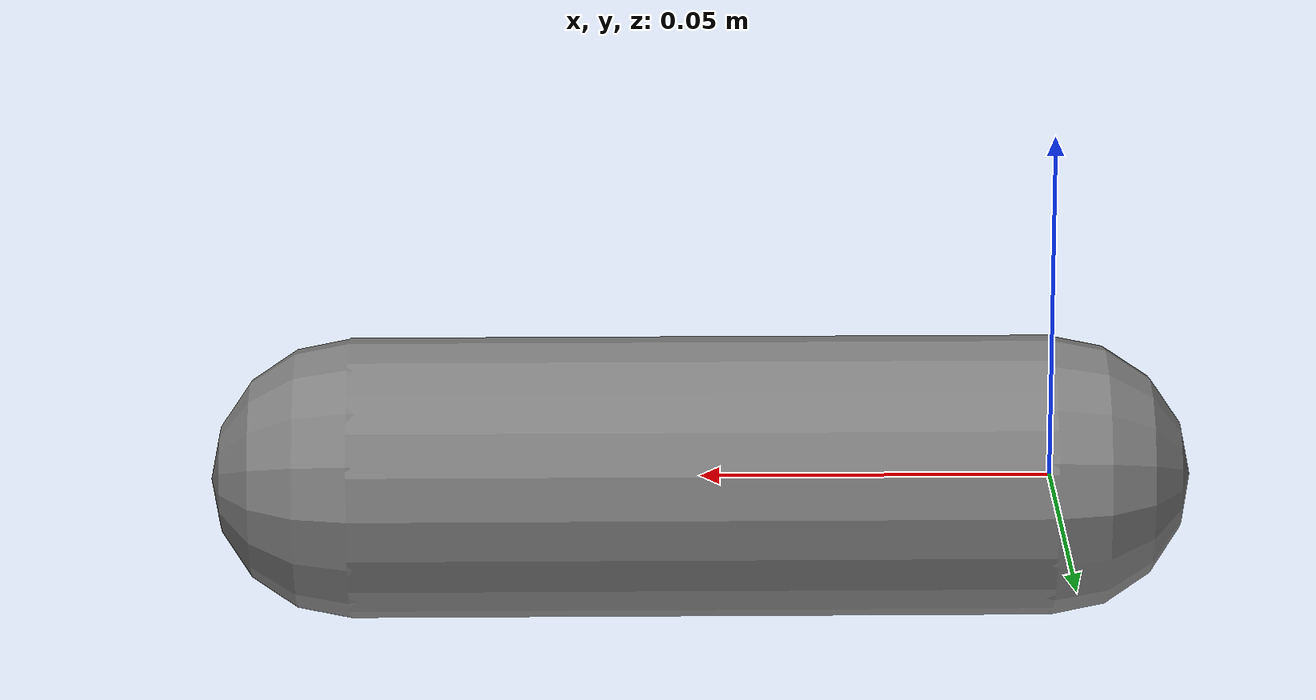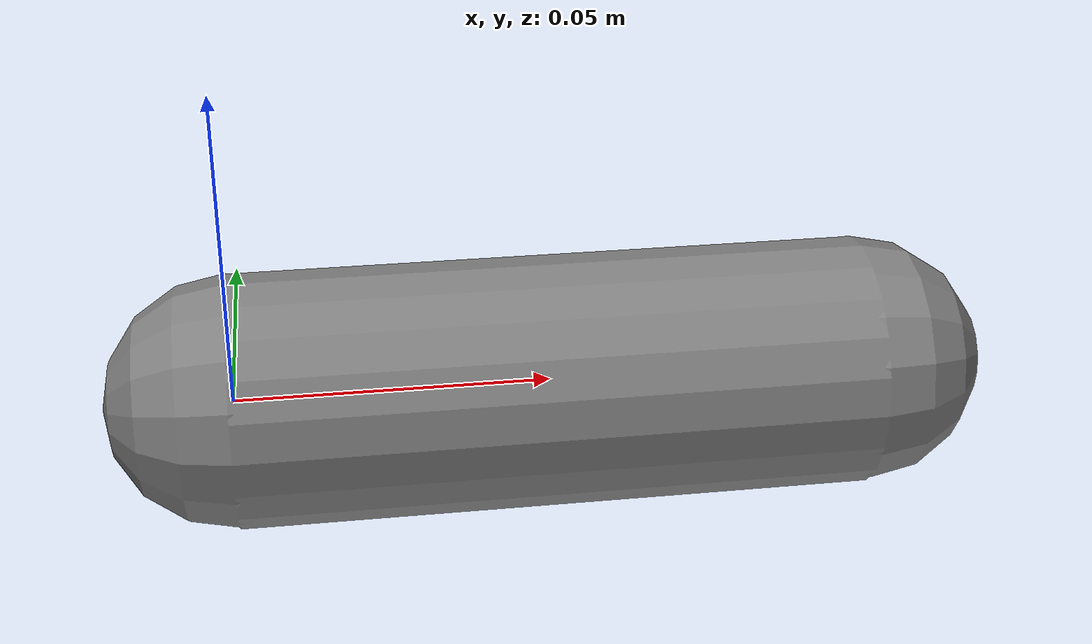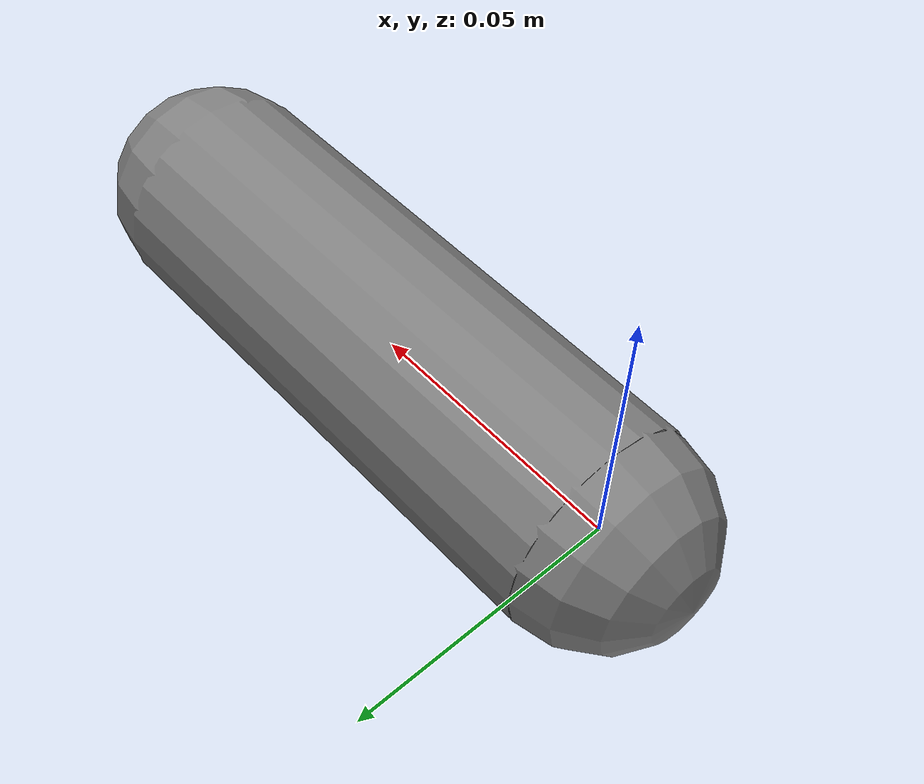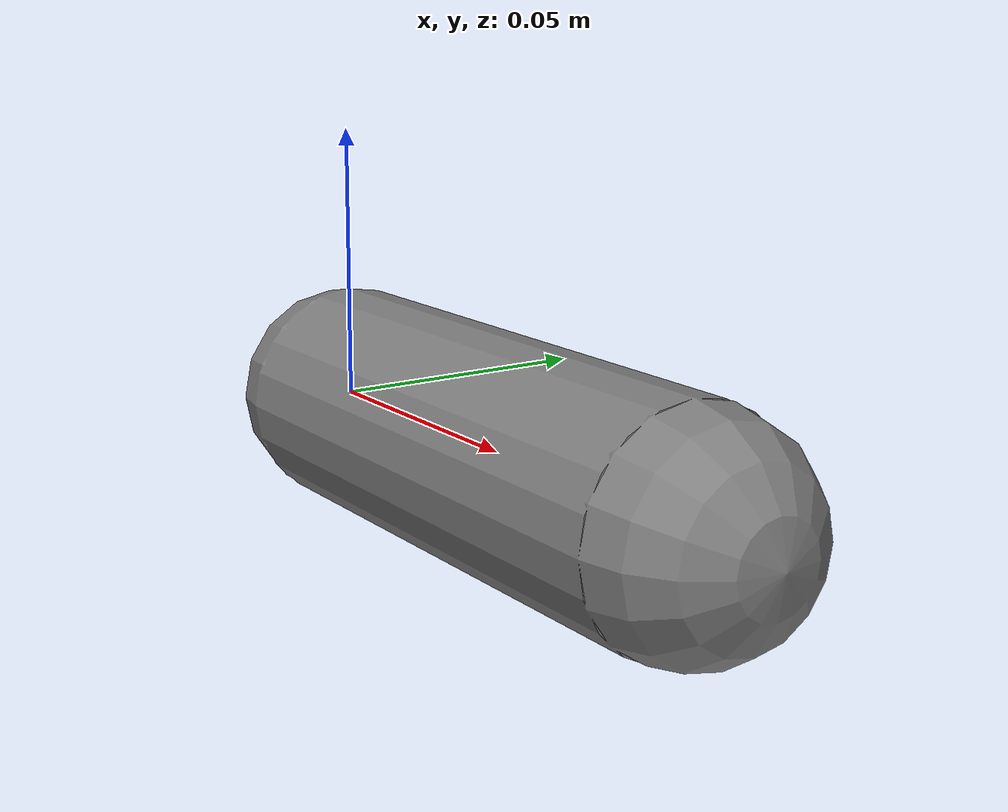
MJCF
<mujoco model="go_m8010_1dof_baseline">
  <option timestep="0.001" gravity="0 0 0" />
  <compiler angle="radian" coordinate="local" />

  <default>
    <joint limited="false" damping="0.01051" frictionloss="0.033" armature="0.000111842"/>
  </default>

  <worldbody>
    <body name="base" pos="0 0 0">
      <!-- A single rotating link around Z -->
      <body name="link" pos="0 0 0">
        <joint name="joint1" type="hinge" axis="0 0 1" />
        <!-- Nominal inertial properties (not identified) -->
        <geom type="capsule" fromto="0 0 0 0.1 0 0" size="0.02 0.15" density="1" />
      </body>
    </body>
  </worldbody>

  <actuator>
    <!-- Direct torque drive on the joint (Nm) -->
    <motor name="tau" joint="joint1" gear="1"
           ctrllimited="true" ctrlrange="-0.2 0.2"/>
  </actuator>

  <sensor>
    <jointpos name="q" joint="joint1" />
    <jointvel name="qd" joint="joint1" />
    <actuatorfrc name="tau_applied" actuator="tau" />
  </sensor>
</mujoco>
